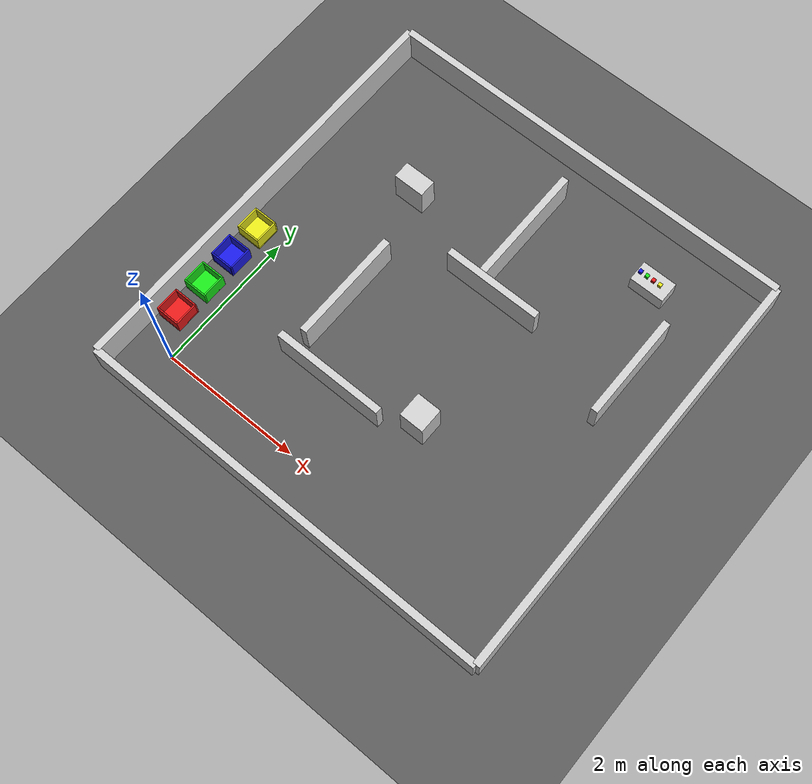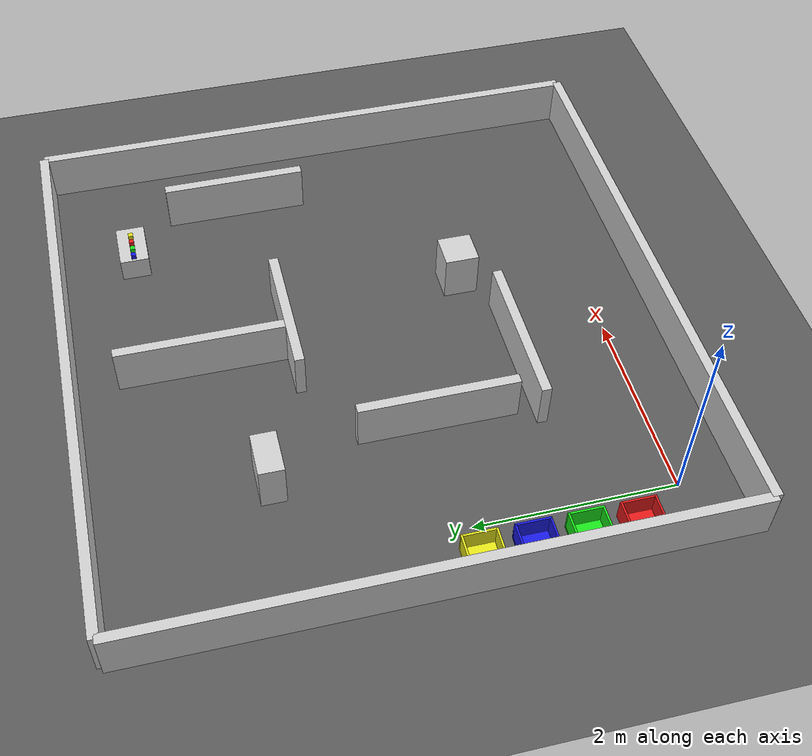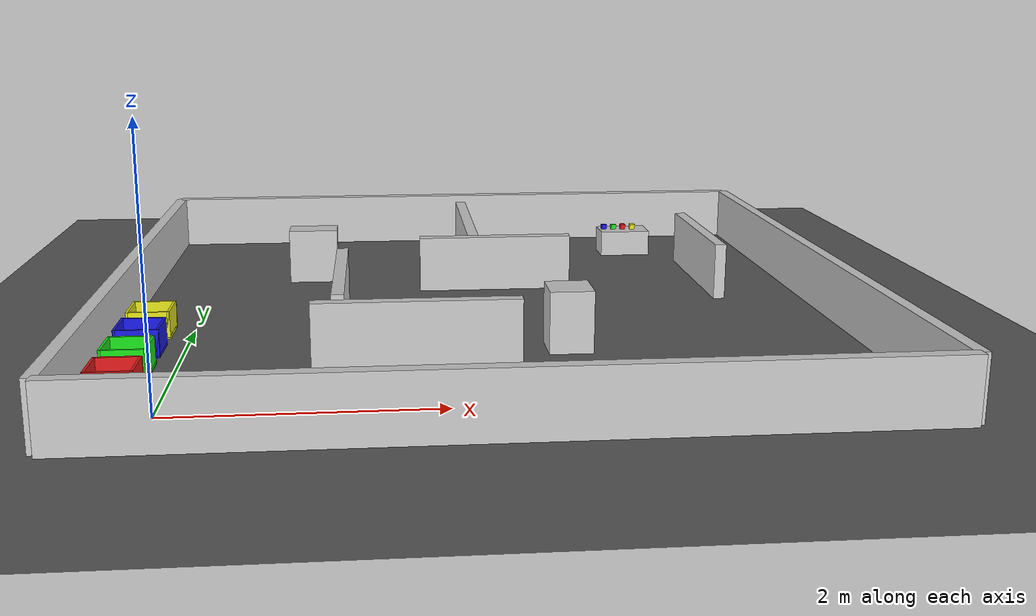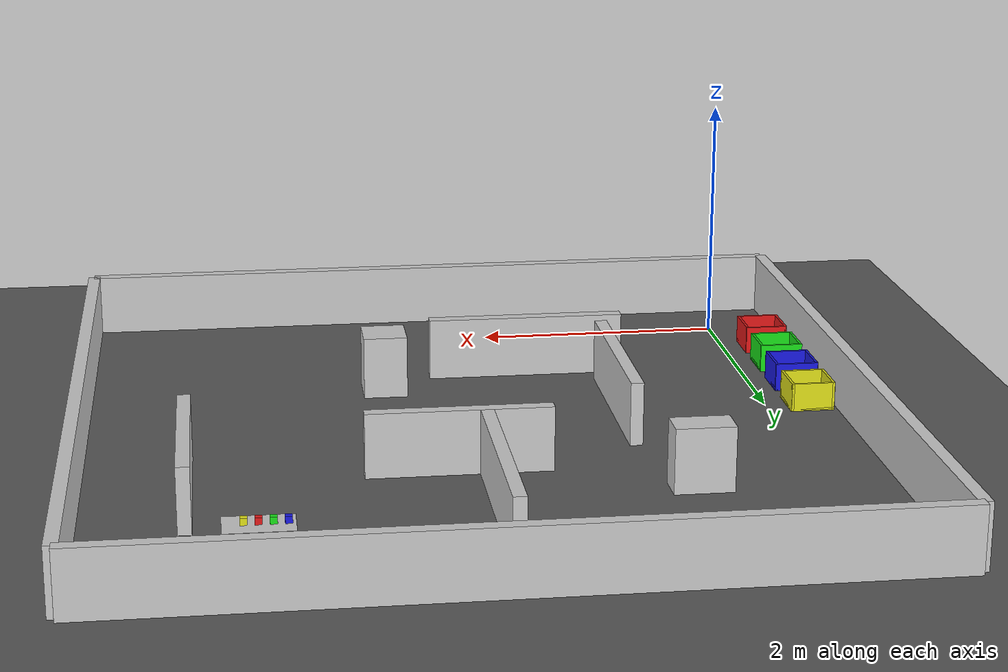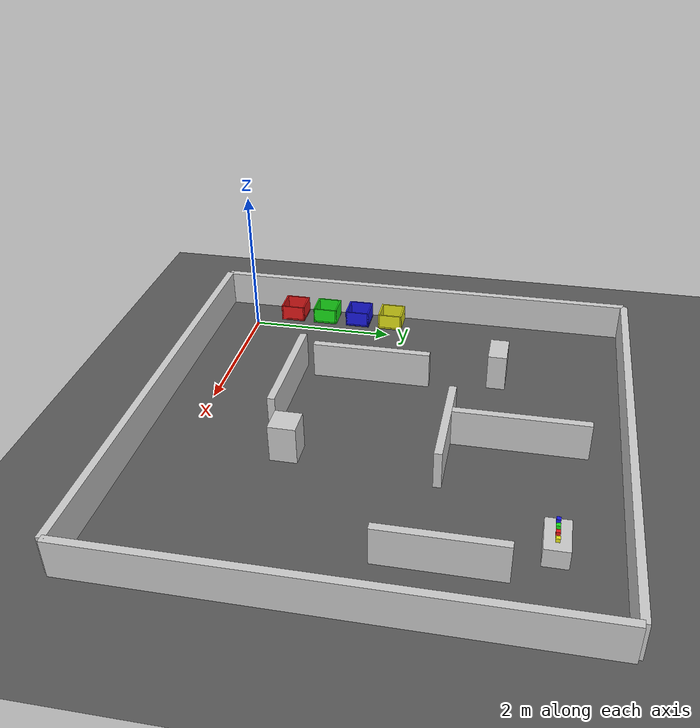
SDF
<?xml version="1.0" ?>
<sdf version="1.9">
  <world name="team1_arena">

    <!-- Core Gazebo Sim systems (recommended) -->
    <plugin filename="gz-sim-physics-system" name="gz::sim::systems::Physics"/>
    <plugin filename="gz-sim-scene-broadcaster-system" name="gz::sim::systems::SceneBroadcaster"/>
    <plugin filename="gz-sim-user-commands-system" name="gz::sim::systems::UserCommands"/>
    <plugin filename="gz-sim-sensors-system" name="gz::sim::systems::Sensors">
      <render_engine>ogre2</render_engine>
    </plugin>

    <!-- Physics tuning (safe defaults) -->
    <physics name="1ms" type="ignored">
      <max_step_size>0.001</max_step_size>
      <real_time_factor>1.0</real_time_factor>
    </physics>

    <!-- Lighting -->
    <light name="sun" type="directional">
      <pose>0 0 10 0 0 0</pose>
      <diffuse>1 1 1 1</diffuse>
      <specular>0.2 0.2 0.2 1</specular>
      <direction>-0.5 0.2 -1</direction>
      <cast_shadows>true</cast_shadows>
    </light>

    <!-- Ground plane (no external model dependencies) -->
    <model name="ground_plane">
      <static>true</static>
      <link name="link">
        <collision name="collision">
          <geometry>
            <plane>
              <normal>0 0 1</normal>
              <size>12 12</size>
            </plane>
          </geometry>
          <surface>
            <friction>
              <ode>
                <mu>1.0</mu>
                <mu2>1.0</mu2>
              </ode>
            </friction>
          </surface>
        </collision>
        <visual name="visual">
          <geometry>
            <plane>
              <normal>0 0 1</normal>
              <size>12 12</size>
            </plane>
          </geometry>
          <material>
            <ambient>0.25 0.25 0.25 1</ambient>
            <diffuse>0.35 0.35 0.35 1</diffuse>
          </material>
        </visual>
      </link>
    </model>

    <!-- Arena boundary walls: 6m x 6m (bigger), positioned so (0,0) is near the bottom-left corner
        Corner is roughly at (-0.6, -0.6), giving the rover some clearance at spawn. -->
    <model name="arena_walls">
      <static>true</static>
      <link name="walls">

        <!-- Wall parameters -->
        <!-- length=6.0, thickness=0.10, height=0.5 -->
        <!-- Lower wall center y=-0.6, upper wall center y=5.4 -->
        <!-- Left wall center x=-0.6, right wall center x=5.4 -->
        <!-- Center of arena is at (2.4, 2.4) -->

        <!-- Bottom (-Y) wall -->
        <collision name="wall_bottom_col">
          <pose>2.4 -0.6 0.25 0 0 0</pose>
          <geometry><box><size>6.0 0.10 0.5</size></box></geometry>
        </collision>
        <visual name="wall_bottom_vis">
          <pose>2.4 -0.6 0.25 0 0 0</pose>
          <geometry><box><size>6.0 0.10 0.5</size></box></geometry>
          <material><diffuse>0.8 0.8 0.8 1</diffuse></material>
        </visual>

        <!-- Top (+Y) wall -->
        <collision name="wall_top_col">
          <pose>2.4 5.4 0.25 0 0 0</pose>
          <geometry><box><size>6.0 0.10 0.5</size></box></geometry>
        </collision>
        <visual name="wall_top_vis">
          <pose>2.4 5.4 0.25 0 0 0</pose>
          <geometry><box><size>6.0 0.10 0.5</size></box></geometry>
          <material><diffuse>0.8 0.8 0.8 1</diffuse></material>
        </visual>

        <!-- Left (-X) wall -->
        <collision name="wall_left_col">
          <pose>-0.6 2.4 0.25 0 0 0</pose>
          <geometry><box><size>0.10 6.0 0.5</size></box></geometry>
        </collision>
        <visual name="wall_left_vis">
          <pose>-0.6 2.4 0.25 0 0 0</pose>
          <geometry><box><size>0.10 6.0 0.5</size></box></geometry>
          <material><diffuse>0.8 0.8 0.8 1</diffuse></material>
        </visual>

        <!-- Right (+X) wall -->
        <collision name="wall_right_col">
          <pose>5.4 2.4 0.25 0 0 0</pose>
          <geometry><box><size>0.10 6.0 0.5</size></box></geometry>
        </collision>
        <visual name="wall_right_vis">
          <pose>5.4 2.4 0.25 0 0 0</pose>
          <geometry><box><size>0.10 6.0 0.5</size></box></geometry>
          <material><diffuse>0.8 0.8 0.8 1</diffuse></material>
        </visual>

      </link>
    </model>

    <!-- Helper: a simple open-top bin built from 5 boxes -->
    <!-- bin footprint 0.35 x 0.35, wall thickness 0.02, wall height 0.30 -->
    <!-- RED bin -->
    <model name="bin_red">
      <static>true</static>
      <pose>-0.35 0.5 0 0 0 0</pose>
      <link name="link">
        <!-- base -->
        <collision name="base_col">
          <pose>0 0 0.01 0 0 0</pose>
          <geometry><box><size>0.35 0.35 0.02</size></box></geometry>
        </collision>
        <visual name="base_vis">
          <pose>0 0 0.01 0 0 0</pose>
          <geometry><box><size>0.35 0.35 0.02</size></box></geometry>
          <material><diffuse>0.9 0.1 0.1 1</diffuse></material>
        </visual>

        <!-- walls -->
        <collision name="w1_col">
          <pose>0 0.165 0.07 0 0 0</pose>
          <geometry><box><size>0.35 0.02 0.30</size></box></geometry>
        </collision>
        <visual name="w1_vis">
          <pose>0 0.165 0.07 0 0 0</pose>
          <geometry><box><size>0.35 0.02 0.30</size></box></geometry>
          <material><diffuse>0.9 0.1 0.1 1</diffuse></material>
        </visual>

        <collision name="w2_col">
          <pose>0 -0.165 0.07 0 0 0</pose>
          <geometry><box><size>0.35 0.02 0.30</size></box></geometry>
        </collision>
        <visual name="w2_vis">
          <pose>0 -0.165 0.07 0 0 0</pose>
          <geometry><box><size>0.35 0.02 0.30</size></box></geometry>
          <material><diffuse>0.9 0.1 0.1 1</diffuse></material>
        </visual>

        <collision name="w3_col">
          <pose>0.165 0 0.07 0 0 0</pose>
          <geometry><box><size>0.02 0.35 0.30</size></box></geometry>
        </collision>
        <visual name="w3_vis">
          <pose>0.165 0 0.07 0 0 0</pose>
          <geometry><box><size>0.02 0.35 0.30</size></box></geometry>
          <material><diffuse>0.9 0.1 0.1 1</diffuse></material>
        </visual>

        <collision name="w4_col">
          <pose>-0.165 0 0.07 0 0 0</pose>
          <geometry><box><size>0.02 0.35 0.30</size></box></geometry>
        </collision>
        <visual name="w4_vis">
          <pose>-0.165 0 0.07 0 0 0</pose>
          <geometry><box><size>0.02 0.35 0.30</size></box></geometry>
          <material><diffuse>0.9 0.1 0.1 1</diffuse></material>
        </visual>
      </link>
    </model>

    <!-- GREEN bin -->
    <model name="bin_green">
      <static>true</static>
      <pose>-0.35 1.0 0 0 0 0</pose>
      <link name="link">
        <collision name="base_col"><pose>0 0 0.01 0 0 0</pose><geometry><box><size>0.35 0.35 0.02</size></box></geometry></collision>
        <visual name="base_vis"><pose>0 0 0.01 0 0 0</pose><geometry><box><size>0.35 0.35 0.02</size></box></geometry><material><diffuse>0.1 0.9 0.1 1</diffuse></material></visual>
        <collision name="w1_col"><pose>0 0.165 0.07 0 0 0</pose><geometry><box><size>0.35 0.02 0.30</size></box></geometry></collision>
        <visual name="w1_vis"><pose>0 0.165 0.07 0 0 0</pose><geometry><box><size>0.35 0.02 0.30</size></box></geometry><material><diffuse>0.1 0.9 0.1 1</diffuse></material></visual>
        <collision name="w2_col"><pose>0 -0.165 0.07 0 0 0</pose><geometry><box><size>0.35 0.02 0.30</size></box></geometry></collision>
        <visual name="w2_vis"><pose>0 -0.165 0.07 0 0 0</pose><geometry><box><size>0.35 0.02 0.30</size></box></geometry><material><diffuse>0.1 0.9 0.1 1</diffuse></material></visual>
        <collision name="w3_col"><pose>0.165 0 0.07 0 0 0</pose><geometry><box><size>0.02 0.35 0.30</size></box></geometry></collision>
        <visual name="w3_vis"><pose>0.165 0 0.07 0 0 0</pose><geometry><box><size>0.02 0.35 0.30</size></box></geometry><material><diffuse>0.1 0.9 0.1 1</diffuse></material></visual>
        <collision name="w4_col"><pose>-0.165 0 0.07 0 0 0</pose><geometry><box><size>0.02 0.35 0.30</size></box></geometry></collision>
        <visual name="w4_vis"><pose>-0.165 0 0.07 0 0 0</pose><geometry><box><size>0.02 0.35 0.30</size></box></geometry><material><diffuse>0.1 0.9 0.1 1</diffuse></material></visual>
      </link>
    </model>

    <!-- BLUE bin -->
    <model name="bin_blue">
      <static>true</static>
      <pose>-0.35 1.5 0 0 0 0</pose>
      <link name="link">
        <collision name="base_col"><pose>0 0 0.01 0 0 0</pose><geometry><box><size>0.35 0.35 0.02</size></box></geometry></collision>
        <visual name="base_vis"><pose>0 0 0.01 0 0 0</pose><geometry><box><size>0.35 0.35 0.02</size></box></geometry><material><diffuse>0.1 0.1 0.9 1</diffuse></material></visual>
        <collision name="w1_col"><pose>0 0.165 0.07 0 0 0</pose><geometry><box><size>0.35 0.02 0.30</size></box></geometry></collision>
        <visual name="w1_vis"><pose>0 0.165 0.07 0 0 0</pose><geometry><box><size>0.35 0.02 0.30</size></box></geometry><material><diffuse>0.1 0.1 0.9 1</diffuse></material></visual>
        <collision name="w2_col"><pose>0 -0.165 0.07 0 0 0</pose><geometry><box><size>0.35 0.02 0.30</size></box></geometry></collision>
        <visual name="w2_vis"><pose>0 -0.165 0.07 0 0 0</pose><geometry><box><size>0.35 0.02 0.30</size></box></geometry><material><diffuse>0.1 0.1 0.9 1</diffuse></material></visual>
        <collision name="w3_col"><pose>0.165 0 0.07 0 0 0</pose><geometry><box><size>0.02 0.35 0.30</size></box></geometry></collision>
        <visual name="w3_vis"><pose>0.165 0 0.07 0 0 0</pose><geometry><box><size>0.02 0.35 0.30</size></box></geometry><material><diffuse>0.1 0.1 0.9 1</diffuse></material></visual>
        <collision name="w4_col"><pose>-0.165 0 0.07 0 0 0</pose><geometry><box><size>0.02 0.35 0.30</size></box></geometry></collision>
        <visual name="w4_vis"><pose>-0.165 0 0.07 0 0 0</pose><geometry><box><size>0.02 0.35 0.30</size></box></geometry><material><diffuse>0.1 0.1 0.9 1</diffuse></material></visual>
      </link>
    </model>

    <!-- YELLOW bin -->
    <model name="bin_yellow">
      <static>true</static>
      <pose>-0.35 2.0 0 0 0 0</pose>
      <link name="link">
        <collision name="base_col"><pose>0 0 0.01 0 0 0</pose><geometry><box><size>0.35 0.35 0.02</size></box></geometry></collision>
        <visual name="base_vis"><pose>0 0 0.01 0 0 0</pose><geometry><box><size>0.35 0.35 0.02</size></box></geometry><material><diffuse>0.9 0.9 0.1 1</diffuse></material></visual>
        <collision name="w1_col"><pose>0 0.165 0.07 0 0 0</pose><geometry><box><size>0.35 0.02 0.30</size></box></geometry></collision>
        <visual name="w1_vis"><pose>0 0.165 0.07 0 0 0</pose><geometry><box><size>0.35 0.02 0.30</size></box></geometry><material><diffuse>0.9 0.9 0.1 1</diffuse></material></visual>
        <collision name="w2_col"><pose>0 -0.165 0.07 0 0 0</pose><geometry><box><size>0.35 0.02 0.30</size></box></geometry></collision>
        <visual name="w2_vis"><pose>0 -0.165 0.07 0 0 0</pose><geometry><box><size>0.35 0.02 0.30</size></box></geometry><material><diffuse>0.9 0.9 0.1 1</diffuse></material></visual>
        <collision name="w3_col"><pose>0.165 0 0.07 0 0 0</pose><geometry><box><size>0.02 0.35 0.30</size></box></geometry></collision>
        <visual name="w3_vis"><pose>0.165 0 0.07 0 0 0</pose><geometry><box><size>0.02 0.35 0.30</size></box></geometry><material><diffuse>0.9 0.9 0.1 1</diffuse></material></visual>
        <collision name="w4_col"><pose>-0.165 0 0.07 0 0 0</pose><geometry><box><size>0.02 0.35 0.30</size></box></geometry></collision>
        <visual name="w4_vis"><pose>-0.165 0 0.07 0 0 0</pose><geometry><box><size>0.02 0.35 0.30</size></box></geometry><material><diffuse>0.9 0.9 0.1 1</diffuse></material></visual>
      </link>
    </model>

    <!-- A few coloured cubes to pick up (dynamic) -->
    <!-- You can copy/paste more and change pose/colour -->
    <model name="obj_red_1">
      <static>false</static>
      <pose>4.1 4.6 0.276 0 0 0</pose>
      <link name="link">
        <inertial>
          <mass>0.08</mass>
          <inertia>
            <ixx>0.00002</ixx><iyy>0.00002</iyy><izz>0.00002</izz>
            <ixy>0</ixy><ixz>0</ixz><iyz>0</iyz>
          </inertia>
        </inertial>
        <collision name="col">
          <geometry><box><size>0.05 0.05 0.05</size></box></geometry>
        </collision>
        <visual name="vis">
          <geometry><box><size>0.05 0.05 0.05</size></box></geometry>
          <material><diffuse>0.9 0.1 0.1 1</diffuse></material>
        </visual>
      </link>
    </model>

    <model name="obj_green_1">
      <static>false</static>
      <pose>4.0 4.6 0.276 0 0 0</pose>
      <link name="link">
        <inertial>
          <mass>0.08</mass>
          <inertia>
            <ixx>0.00002</ixx><iyy>0.00002</iyy><izz>0.00002</izz>
            <ixy>0</ixy><ixz>0</ixz><iyz>0</iyz>
          </inertia>
        </inertial>
        <collision name="col"><geometry><box><size>0.05 0.05 0.05</size></box></geometry></collision>
        <visual name="vis">
          <geometry><box><size>0.05 0.05 0.05</size></box></geometry>
          <material><diffuse>0.1 0.9 0.1 1</diffuse></material>
        </visual>
      </link>
    </model>

    <model name="obj_blue_1">
      <static>false</static>
      <pose>3.9 4.6 0.276 0 0 0</pose>
      <link name="link">
        <inertial>
          <mass>0.08</mass>
          <inertia>
            <ixx>0.00002</ixx><iyy>0.00002</iyy><izz>0.00002</izz>
            <ixy>0</ixy><ixz>0</ixz><iyz>0</iyz>
          </inertia>
        </inertial>
        <collision name="col"><geometry><box><size>0.05 0.05 0.05</size></box></geometry></collision>
        <visual name="vis">
          <geometry><box><size>0.05 0.05 0.05</size></box></geometry>
          <material><diffuse>0.1 0.1 0.9 1</diffuse></material>
        </visual>
      </link>
    </model>

    <model name="obj_yellow_1">
      <static>false</static>
      <pose>4.2 4.6 0.276 0 0 0</pose>
      <link name="link">
        <inertial>
          <mass>0.08</mass>
          <inertia>
            <ixx>0.00002</ixx><iyy>0.00002</iyy><izz>0.00002</izz>
            <ixy>0</ixy><ixz>0</ixz><iyz>0</iyz>
          </inertia>
        </inertial>
        <collision name="col"><geometry><box><size>0.05 0.05 0.05</size></box></geometry></collision>
        <visual name="vis">
          <geometry><box><size>0.05 0.05 0.05</size></box></geometry>
          <material><diffuse>0.9 0.9 0.1 1</diffuse></material>
        </visual>
      </link>
    </model>

    <!-- Maze-like obstacles: same height as walls (0.5), same colour as walls -->
    <!-- Each is a static box placed to create corridors -->
    <model name="maze_obstacles">
      <static>true</static>
      <link name="link">

        <!-- Helper: z=0.25 makes a 0.5m-high box sit on the ground -->

        <!-- Long horizontal blocks -->
        <collision name="o1_col"><pose>1.8 1.0 0.25 0 0 0</pose><geometry><box><size>1.6 0.10 0.5</size></box></geometry></collision>
        <visual    name="o1_vis"><pose>1.8 1.0 0.25 0 0 0</pose><geometry><box><size>1.6 0.10 0.5</size></box></geometry><material><diffuse>0.8 0.8 0.8 1</diffuse></material></visual>

        <collision name="o3_col"><pose>2.6 3.2 0.25 0 0 0</pose><geometry><box><size>1.4 0.10 0.5</size></box></geometry></collision>
        <visual    name="o3_vis"><pose>2.6 3.2 0.25 0 0 0</pose><geometry><box><size>1.4 0.10 0.5</size></box></geometry><material><diffuse>0.8 0.8 0.8 1</diffuse></material></visual>

        <!-- Vertical blocks -->
        <collision name="o4_col"><pose>1.2 2.0 0.25 0 0 0</pose><geometry><box><size>0.10 1.6 0.5</size></box></geometry></collision>
        <visual    name="o4_vis"><pose>1.2 2.0 0.25 0 0 0</pose><geometry><box><size>0.10 1.6 0.5</size></box></geometry><material><diffuse>0.8 0.8 0.8 1</diffuse></material></visual>

        <collision name="o5_col"><pose>2.4 4.1 0.25 0 0 0</pose><geometry><box><size>0.10 1.7 0.5</size></box></geometry></collision>
        <visual    name="o5_vis"><pose>2.4 4.1 0.25 0 0 0</pose><geometry><box><size>0.10 1.7 0.5</size></box></geometry><material><diffuse>0.8 0.8 0.8 1</diffuse></material></visual>

        <collision name="o6_col"><pose>4.6 3.4 0.25 0 0 0</pose><geometry><box><size>0.10 1.5 0.5</size></box></geometry></collision>
        <visual    name="o6_vis"><pose>4.6 3.4 0.25 0 0 0</pose><geometry><box><size>0.10 1.5 0.5</size></box></geometry><material><diffuse>0.8 0.8 0.8 1</diffuse></material></visual>

        <!-- A few chunky blocks (to make it “maze-ish”) -->
        <collision name="o7_col"><pose>3.0 1.3 0.25 0 0 0</pose><geometry><box><size>0.35 0.35 0.5</size></box></geometry></collision>
        <visual    name="o7_vis"><pose>3.0 1.3 0.25 0 0 0</pose><geometry><box><size>0.35 0.35 0.5</size></box></geometry><material><diffuse>0.8 0.8 0.8 1</diffuse></material></visual>

        <collision name="o8_col"><pose>0.9 3.7 0.25 0 0 0</pose><geometry><box><size>0.45 0.25 0.5</size></box></geometry></collision>
        <visual    name="o8_vis"><pose>0.9 3.7 0.25 0 0 0</pose><geometry><box><size>0.45 0.25 0.5</size></box></geometry><material><diffuse>0.8 0.8 0.8 1</diffuse></material></visual>

        <collision name="o9_col"><pose>4.1 4.6 0.125 0 0 0</pose><geometry><box><size>0.50 0.30 0.25</size></box></geometry></collision>
        <visual    name="o9_vis"><pose>4.1 4.6 0.125 0 0 0</pose><geometry><box><size>0.50 0.30 0.25</size></box></geometry><material><diffuse>0.8 0.8 0.8 1</diffuse></material></visual>

      </link>
    </model>

  </world>
</sdf>
